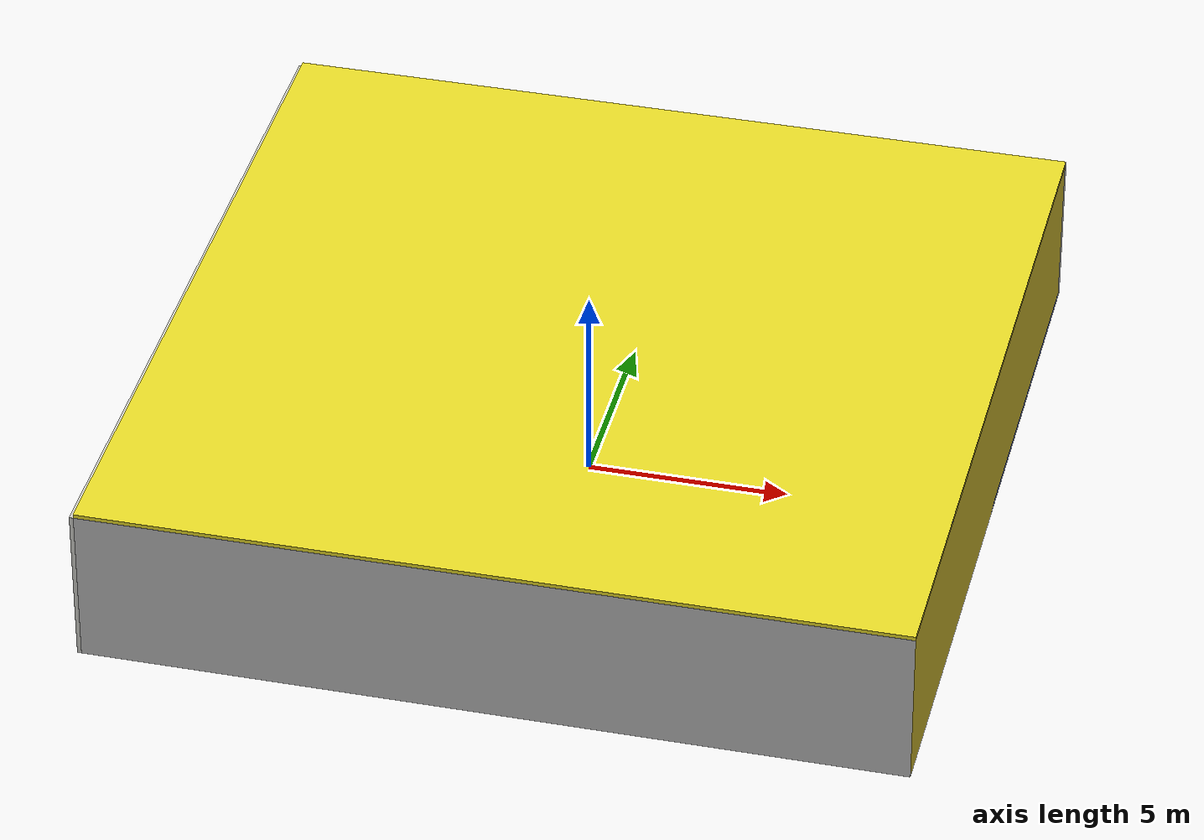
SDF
<sdf version="1.4">
 <world name="default">
  <physics type="ode">
   <max_step_size>0.001</max_step_size>
   <real_time_factor>1</real_time_factor>
   <real_time_update_rate>1000</real_time_update_rate>
   <gravity>0 0 -9.8</gravity>
  </physics>
  <scene><ambient>0.4 0.4 0.4 1</ambient><background>0.7 0.7 0.7 1</background><shadows>1</shadows></scene>
  <model name="Surrounding">
   <static>1</static>
   <link name="Ceiling">
    <collision name="Ceiling_Collision"><geometry><box><size>20 20 0.1</size></box></geometry></collision>
    <visual name="Ceiling_Visual">
     <geometry><box><size>20 20 0.1</size></box></geometry>
     <material>
      <script><uri>file://media/materials/scripts/gazebo.material</uri><name>Gazebo/Yellow</name></script>
     </material>
    </visual>
    <pose>0 0 4.05 0 0 0</pose>
   </link>
   <link name="Wall_South">
    <collision name="Wall_South_Collision">
     <geometry><box><size>20 0 4</size></box></geometry>
     <pose>0 0 2 0 -0 0</pose>
    </collision>
    <visual name="Wall_South_Visual">
     <pose>0 0 2 0 -0 0</pose>
     <geometry><box><size>20 0 4</size></box></geometry>
     <material>
      <script><uri>file://media/materials/scripts/gazebo.material</uri><name>Gazebo/CloudySky</name></script>
     </material>
    </visual>
    <velocity_decay><linear>0</linear><angular>0</angular></velocity_decay>
    <pose>0 -10 0 0 -0 0</pose>
   </link>
   <link name="Wall_East">
    <collision name="Wall_21_Collision">
     <geometry><box><size>20 0 4</size></box></geometry>
     <pose>0 0 2 0 -0 0</pose>
    </collision>
    <visual name="Wall_21_Visual">
     <pose>0 0 2 0 -0 0</pose>
     <geometry><box><size>20 0 4</size></box></geometry>
     <material>
      <script><uri>file://media/materials/scripts/gazebo.material</uri><name>Gazebo/ZincYellow</name></script>
     </material>
    </visual>
    <velocity_decay><linear>0</linear><angular>0</angular></velocity_decay>
    <pose>10 0 0 0 -0 1.5708</pose>
   </link>
   <link name="Wall_North">
    <collision name="Wall_22_Collision">
     <geometry><box><size>20 0.2 4</size></box></geometry>
     <pose>0 0 2 0 -0 0</pose>
    </collision>
    <visual name="Wall_22_Visual">
     <pose>0 0 2 0 -0 0</pose>
     <geometry><box><size>20 0.2 4</size></box></geometry>
     <material>
      <script><uri>file://media/materials/scripts/gazebo.material</uri><name>Gazebo/PaintedWall</name></script>
     </material>
    </visual>
    <velocity_decay><linear>0</linear><angular>0</angular></velocity_decay>
    <pose>0 10 0 0 -0 0</pose>
   </link>
   <link name="Wall_West">
    <collision name="Wall_23_Collision">
     <geometry><box><size>20 0.2 4</size></box></geometry>
     <pose>0 0 2 0 -0 0</pose>
    </collision>
    <visual name="Wall_23_Visual">
     <pose>0 0 2 0 -0 0</pose>
     <geometry><box><size>20 0.2 4</size></box></geometry>
     <material>
      <script><uri>file://media/materials/scripts/gazebo.material</uri><name>Gazebo/CeilingTiled</name></script>
     </material>
    </visual>
    <velocity_decay><linear>0</linear><angular>0</angular></velocity_decay>
    <pose>-10 0 0 0 0 -1.5708</pose>
   </link>
   <link name="Ground_link">
    <collision name="collision">
     <pose>0 0 .05 0 -0 0</pose>
     <geometry><box><size>20 20 0.1</size></box></geometry>
    </collision>
    <visual name="visual">
     <pose>0 0 .05 0 -0 0</pose>
     <geometry><box><size>20 20 0.1</size></box></geometry>
     <material>
      <script><uri>file://media/materials/scripts/gazebo.material</uri><name>Gazebo/Blue</name></script>
     </material>
    </visual>
   </link>
   <static>1</static>
  </model>
  <spherical_coordinates>
   <surface_model>EARTH_WGS84</surface_model>
   <latitude_deg>0</latitude_deg>
   <longitude_deg>0</longitude_deg>
   <elevation>0</elevation>
   <heading_deg>0</heading_deg>
  </spherical_coordinates>
  <light name="lightball_0" type="diffuse">
   <diffuse>0.8 0.8 0.8 1</diffuse>
   <specular>0.2 0.2 0.2 1</specular>
   <attenuation>
    <range>100</range>
    <constant>0.7</constant>
    <linear>0.01</linear>
    <quadratic>0.001</quadratic>
   </attenuation>
   <direction>-0.5 0.1 -0.9</direction>
   <pose>-4.51911335034 -9.98448435162 2.97183216883 0 0 0</pose>
  </light>
  <light name="lightball_1" type="diffuse">
   <diffuse>0.8 0.8 0.8 1</diffuse>
   <specular>0.2 0.2 0.2 1</specular>
   <attenuation>
    <range>100</range>
    <constant>0.7</constant>
    <linear>0.01</linear>
    <quadratic>0.001</quadratic>
   </attenuation>
   <direction>-0.5 0.1 -0.9</direction>
   <pose>9.77102122088 6.21206675225 2.37186867006 0 0 0</pose>
  </light>
  <light name="lightball_2" type="diffuse">
   <diffuse>0.8 0.8 0.8 1</diffuse>
   <specular>0.2 0.2 0.2 1</specular>
   <attenuation>
    <range>100</range>
    <constant>0.7</constant>
    <linear>0.01</linear>
    <quadratic>0.001</quadratic>
   </attenuation>
   <direction>-0.5 0.1 -0.9</direction>
   <pose>-8.77863733325 -1.7745194316 3.34442910549 0 0 0</pose>
  </light>
  <light name="lightball_3" type="diffuse">
   <diffuse>0.8 0.8 0.8 1</diffuse>
   <specular>0.2 0.2 0.2 1</specular>
   <attenuation>
    <range>100</range>
    <constant>0.7</constant>
    <linear>0.01</linear>
    <quadratic>0.001</quadratic>
   </attenuation>
   <direction>-0.5 0.1 -0.9</direction>
   <pose>-1.86026142278 -3.32234361309 1.5528618782 0 0 0</pose>
  </light>
  <light name="lightball_4" type="diffuse">
   <diffuse>0.8 0.8 0.8 1</diffuse>
   <specular>0.2 0.2 0.2 1</specular>
   <attenuation>
    <range>100</range>
    <constant>0.7</constant>
    <linear>0.01</linear>
    <quadratic>0.001</quadratic>
   </attenuation>
   <direction>-0.5 0.1 -0.9</direction>
   <pose>6.83359016101 -1.65713719661 1.18704004492 0 0 0</pose>
  </light>
  <light name="lightball_5" type="diffuse">
   <diffuse>0.8 0.8 0.8 1</diffuse>
   <specular>0.2 0.2 0.2 1</specular>
   <attenuation>
    <range>100</range>
    <constant>0.7</constant>
    <linear>0.01</linear>
    <quadratic>0.001</quadratic>
   </attenuation>
   <direction>-0.5 0.1 -0.9</direction>
   <pose>-4.772530474 -8.8333857917 1.61904882072 0 0 0</pose>
  </light>
  <light name="lightball_6" type="diffuse">
   <diffuse>0.8 0.8 0.8 1</diffuse>
   <specular>0.2 0.2 0.2 1</specular>
   <attenuation>
    <range>100</range>
    <constant>0.7</constant>
    <linear>0.01</linear>
    <quadratic>0.001</quadratic>
   </attenuation>
   <direction>-0.5 0.1 -0.9</direction>
   <pose>1.30448213256 -7.93147852595 2.46030899026 0 0 0</pose>
  </light>
  <light name="lightball_7" type="diffuse">
   <diffuse>0.8 0.8 0.8 1</diffuse>
   <specular>0.2 0.2 0.2 1</specular>
   <attenuation>
    <range>100</range>
    <constant>0.7</constant>
    <linear>0.01</linear>
    <quadratic>0.001</quadratic>
   </attenuation>
   <direction>-0.5 0.1 -0.9</direction>
   <pose>5.30811625205 3.79014444353 1.0035257563 0 0 0</pose>
  </light>
  <include>
   <uri>model://robocup_3Dsim_goal</uri>
   <pose>-4.75199082019 6.75822157316 0 0 0 2.4856067579</pose>
  </include>
  <include>
   <uri>model://textured_shapes</uri>
   <pose>2.17776727694 -1.40965725001 0 0 0 2.2422618795</pose>
  </include>
  <include><uri>model://table</uri><pose>5.11455553313 5.0331394345 0 0 0 1.66125062327</pose></include>
 </world>
</sdf>

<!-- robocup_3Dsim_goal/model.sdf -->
<sdf version="1.5">
  <model name="robocup_3d_goal">
    <static>true</static>
    <link name="left_post">
      <pose>0 1.05 0.45 0 0 0</pose>
      <collision name="collision">
        <geometry>
          <cylinder>
            <radius>0.05</radius>
            <length>0.9</length>
          </cylinder>
        </geometry>
      </collision>
      <visual name="visual">
        <geometry>
          <cylinder>
            <radius>0.05</radius>
            <length>0.9</length>
          </cylinder>
        </geometry>
        <material>
          <script>
            <uri>file://media/materials/scripts/gazebo.material</uri>
            <name>Gazebo/ZincYellow</name>
          </script>
        </material>
      </visual>
    </link>
    <link name="left_support_horiz_lower">
      <pose>0.30 1.05 0.01 0 0 0</pose>
      <collision name="collision">
        <geometry>
          <box>
            <size>0.50 0.02 0.02</size>
          </box>
        </geometry>
      </collision>
      <visual name="visual">
        <geometry>
          <box>
            <size>0.50 0.02 0.02</size>
          </box>
        </geometry>
        <material>
          <script>
            <uri>file://media/materials/scripts/gazebo.material</uri>
            <name>Gazebo/White</name>
          </script>
        </material>
      </visual>
    </link>
    <link name="left_support_horiz_upper">
      <pose>0.30 1.05 0.79 0 0 0</pose>
      <collision name="collision">
        <geometry>
          <box>
            <size>0.50 0.02 0.02</size>
          </box>
        </geometry>
      </collision>
      <visual name="visual">
        <geometry>
          <box>
            <size>0.50 0.02 0.02</size>
          </box>
        </geometry>
        <material>
          <script>
            <uri>file://media/materials/scripts/gazebo.material</uri>
            <name>Gazebo/White</name>
          </script>
        </material>
      </visual>
    </link>
    <link name="left_support_vertical">
      <pose>0.56 1.05 0.4 0 1.5708 0</pose>
      <collision name="collision">
        <geometry>
          <box>
            <size>0.80 0.02 0.02</size>
          </box>
        </geometry>
      </collision>
      <visual name="visual">
        <geometry>
          <box>
            <size>0.80 0.02 0.02</size>
          </box>
        </geometry>
        <material>
          <script>
            <uri>file://media/materials/scripts/gazebo.material</uri>
            <name>Gazebo/White</name>
          </script>
        </material>
      </visual>
    </link>
    <link name="right_support_horiz_lower">
      <pose>0.30 -1.05 0.01 0 0 0</pose>
      <collision name="collision">
        <geometry>
          <box>
            <size>0.50 0.02 0.02</size>
          </box>
        </geometry>
      </collision>
      <visual name="visual">
        <geometry>
          <box>
            <size>0.50 0.02 0.02</size>
          </box>
        </geometry>
        <material>
          <script>
            <uri>file://media/materials/scripts/gazebo.material</uri>
            <name>Gazebo/White</name>
          </script>
        </material>
      </visual>
    </link>
    <link name="right_support_horiz_upper">
      <pose>0.30 -1.05 0.79 0 0 0</pose>
      <collision name="collision">
        <geometry>
          <box>
            <size>0.50 0.02 0.02</size>
          </box>
        </geometry>
      </collision>
      <visual name="visual">
        <geometry>
          <box>
            <size>0.50 0.02 0.02</size>
          </box>
        </geometry>
        <material>
          <script>
            <uri>file://media/materials/scripts/gazebo.material</uri>
            <name>Gazebo/White</name>
          </script>
        </material>
      </visual>
    </link>
    <link name="right_support_vertical">
      <pose>0.56 -1.05 0.4 0 1.5708 0</pose>
      <collision name="collision">
        <geometry>
          <box>
            <size>0.80 0.02 0.02</size>
          </box>
        </geometry>
      </collision>
      <visual name="visual">
        <geometry>
          <box>
            <size>0.80 0.02 0.02</size>
          </box>
        </geometry>
        <material>
          <script>
            <uri>file://media/materials/scripts/gazebo.material</uri>
            <name>Gazebo/White</name>
          </script>
        </material>
      </visual>
    </link>
    <link name="center_support_horiz_lower">
      <pose>0.56 0 0.01 0 1.5708 0</pose>
      <collision name="collision">
        <geometry>
          <box>
            <size>0.02 2.08 0.02</size>
          </box>
        </geometry>
      </collision>
      <visual name="visual">
        <geometry>
          <box>
            <size>0.02 2.08 0.02</size>
          </box>
        </geometry>
        <material>
          <script>
            <uri>file://media/materials/scripts/gazebo.material</uri>
            <name>Gazebo/White</name>
          </script>
        </material>
      </visual>
    </link>
    <link name="center_support_horiz_upper">
      <pose>0.56 0 0.79 0 1.5708 0</pose>
      <collision name="collision">
        <geometry>
          <box>
            <size>0.02 2.08 0.02</size>
          </box>
        </geometry>
      </collision>
      <visual name="visual">
        <geometry>
          <box>
            <size>0.02 2.08 0.02</size>
          </box>
        </geometry>
        <material>
          <script>
            <uri>file://media/materials/scripts/gazebo.material</uri>
            <name>Gazebo/White</name>
          </script>
        </material>
      </visual>
    </link>
    <link name="right_post">
      <pose>0 -1.05 0.45 0 0 0</pose>
      <collision name="collision">
        <geometry>
          <cylinder>
            <radius>0.05</radius>
            <length>0.9</length>
          </cylinder>
        </geometry>
      </collision>
      <visual name="visual">
        <geometry>
          <cylinder>
            <radius>0.05</radius>
            <length>0.9</length>
          </cylinder>
        </geometry>
        <material>
          <script>
            <uri>file://media/materials/scripts/gazebo.material</uri>
            <name>Gazebo/ZincYellow</name>
          </script>
        </material>
      </visual>
    </link>
    <link name="crossbar">
      <pose>0 0 0.85 1.57 1.57 0</pose>
      <collision name="collision">
        <geometry>
          <cylinder>
            <radius>0.05</radius>
            <length>2.0</length>
          </cylinder>
        </geometry>
      </collision>
      <visual name="visual">
        <geometry>
          <cylinder>
            <radius>0.05</radius>
            <length>2.0</length>
          </cylinder>
        </geometry>
        <material>
          <script>
            <uri>file://media/materials/scripts/gazebo.material</uri>
            <name>Gazebo/ZincYellow</name>
          </script>
        </material>
      </visual>
    </link>
    <link name="center_net">
      <pose>0.56 0 0.40 0 0 0</pose>
      <collision name="collision">
        <geometry>
          <box>
            <size>0.01 2.1 0.80</size>
          </box>
        </geometry>
      </collision>
      <visual name="visual">
        <geometry>
          <box>
            <size>0.01 2.1 0.80</size>
          </box>
        </geometry>
        <material>
          <script>
            <uri>model://../model_source/models/robocup09_spl_field/materials/scripts/</uri>
            <uri>model://../model_source/models/robocup09_spl_field/materials/textures/</uri>
            <name>RoboCup/Net</name>
          </script>
        </material>
      </visual>
    </link>
    <link name="left_net">
      <pose>0.30 1.05 0.40 0 0 0</pose>
      <collision name="collision">
        <geometry>
          <box>
            <size>0.50 0.01 0.76</size>
          </box>
        </geometry>
      </collision>
      <visual name="visual">
        <geometry>
          <box>
            <size>0.50 0.01 0.76</size>
          </box>
        </geometry>
        <material>
          <script>
            <uri>model://../model_source/models/robocup09_spl_field/materials/scripts/</uri>
            <uri>model://../model_source/models/robocup09_spl_field/materials/textures/</uri>
            <name>RoboCup/Net</name>
          </script>
        </material>
      </visual>
    </link>
    <link name="right_net">
      <pose>0.30 -1.05 0.40 0 0 0</pose>
      <collision name="collision">
        <geometry>
          <box>
            <size>0.50 0.01 0.76</size>
          </box>
        </geometry>
      </collision>
      <visual name="visual">
        <geometry>
          <box>
            <size>0.50 0.01 0.76</size>
          </box>
        </geometry>
        <material>
          <script>
            <uri>model://../model_source/models/robocup09_spl_field/materials/scripts/</uri>
            <uri>model://../model_source/models/robocup09_spl_field/materials/textures/</uri>
            <name>RoboCup/Net</name>
          </script>
        </material>
      </visual>
    </link>
  </model>
</sdf>

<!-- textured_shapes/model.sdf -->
<sdf version="1.6">
  <model name="textured_shapes">
    <pose>0 0 0.5 0 0 0</pose>
    <link name="box">
      <pose>0 -1.5 0 0 0 0</pose>
      <collision name="collision">
        <geometry>
          <box>
            <size>1 1 1</size>
          </box>
        </geometry>
      </collision>
      <visual name="visual">
        <geometry>
          <box>
            <size>1 1 1</size>
          </box>
        </geometry>
        <material>
          <script>
            <uri>model://../model_source/models/textured_shapes/materials/scripts</uri>
            <uri>model://../model_source/models/textured_shapes/materials/textures</uri>
            <name>TexturedShape/Squares</name>
          </script>
        </material>
      </visual>
    </link>
    <link name="sphere">
      <collision name="collision">
        <geometry>
          <sphere>
            <radius>0.5</radius>
          </sphere>
        </geometry>
      </collision>
      <visual name="visual">
        <geometry>
          <sphere>
            <radius>0.5</radius>
          </sphere>
        </geometry>
        <material>
          <script>
            <uri>model://../model_source/models/textured_shapes/materials/scripts</uri>
            <uri>model://../model_source/models/textured_shapes/materials/textures</uri>
            <name>TexturedShape/Squares</name>
          </script>
        </material>
      </visual>
    </link>
    <link name="cylinder">
      <pose>0 1.5 0 0 0 0</pose>
      <collision name="collision">
        <geometry>
          <cylinder>
            <radius>0.5</radius>
            <length>1</length>
          </cylinder>
        </geometry>
      </collision>
      <visual name="visual">
        <geometry>
          <cylinder>
            <radius>0.5</radius>
            <length>1</length>
          </cylinder>
        </geometry>
        <material>
          <script>
            <uri>model://../model_source/models/textured_shapes/materials/scripts</uri>
            <uri>model://../model_source/models/textured_shapes/materials/textures</uri>
            <name>TexturedShape/Squares</name>
          </script>
        </material>
      </visual>
    </link>
  </model>
</sdf>

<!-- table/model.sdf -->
<sdf version="1.5">
  <model name="table">
    <static>true</static>
    <link name="link">
      <collision name="surface">
        <pose>0 0 1.0 0 0 0</pose>
        <geometry>
          <box>
            <size>1.5 0.8 0.03</size>
          </box>
        </geometry>
        <surface>
          <friction>
            <ode>
              <mu>0.6</mu>
              <mu2>0.6</mu2>
            </ode>
          </friction>
        </surface>
      </collision>
      <visual name="visual1">
        <pose>0 0 1.0 0 0 0</pose>
        <geometry>
          <box>
            <size>1.5 0.8 0.03</size>
          </box>
        </geometry>
        <material>
          <script>
            <uri>model://media/materials/scripts/gazebo.material</uri>
            <name>Gazebo/Wood</name>
          </script>
        </material>
      </visual>
      <collision name="front_left_leg">
        <pose>0.68 0.38 0.5 0 0 0</pose>
        <geometry>
          <cylinder>
            <radius>0.02</radius>
            <length>1.0</length>
          </cylinder>
        </geometry>
      </collision>
      <visual name="front_left_leg">
        <pose>0.68 0.38 0.5 0 0 0</pose>
        <geometry>
          <cylinder>
            <radius>0.02</radius>
            <length>1.0</length>
          </cylinder>
        </geometry>
        <material>
          <script>
            <uri>model://media/materials/scripts/gazebo.material</uri>
            <name>Gazebo/Grey</name>
          </script>
        </material>
      </visual>
      <collision name="front_right_leg">
        <pose>0.68 -0.38 0.5 0 0 0</pose>
        <geometry>
          <cylinder>
            <radius>0.02</radius>
            <length>1.0</length>
          </cylinder>
        </geometry>
      </collision>
      <visual name="front_right_leg">
        <pose>0.68 -0.38 0.5 0 0 0</pose>
        <geometry>
          <cylinder>
            <radius>0.02</radius>
            <length>1.0</length>
          </cylinder>
        </geometry>
        <material>
          <script>
            <uri>model://media/materials/scripts/gazebo.material</uri>
            <name>Gazebo/Grey</name>
          </script>
        </material>
      </visual>
      <collision name="back_right_leg">
        <pose>-0.68 -0.38 0.5 0 0 0</pose>
        <geometry>
          <cylinder>
            <radius>0.02</radius>
            <length>1.0</length>
          </cylinder>
        </geometry>
      </collision>
      <visual name="back_right_leg">
        <pose>-0.68 -0.38 0.5 0 0 0</pose>
        <geometry>
          <cylinder>
            <radius>0.02</radius>
            <length>1.0</length>
          </cylinder>
        </geometry>
        <material>
          <script>
            <uri>model://media/materials/scripts/gazebo.material</uri>
            <name>Gazebo/Grey</name>
          </script>
        </material>
      </visual>
      <collision name="back_left_leg">
        <pose>-0.68 0.38 0.5 0 0 0</pose>
        <geometry>
          <cylinder>
            <radius>0.02</radius>
            <length>1.0</length>
          </cylinder>
        </geometry>
      </collision>
      <visual name="back_left_leg">
        <pose>-0.68 0.38 0.5 0 0 0</pose>
        <geometry>
          <cylinder>
            <radius>0.02</radius>
            <length>1.0</length>
          </cylinder>
        </geometry>
        <material>
          <script>
            <uri>model://media/materials/scripts/gazebo.material</uri>
            <name>Gazebo/Grey</name>
          </script>
        </material>
      </visual>
    </link>
  </model>
</sdf>
